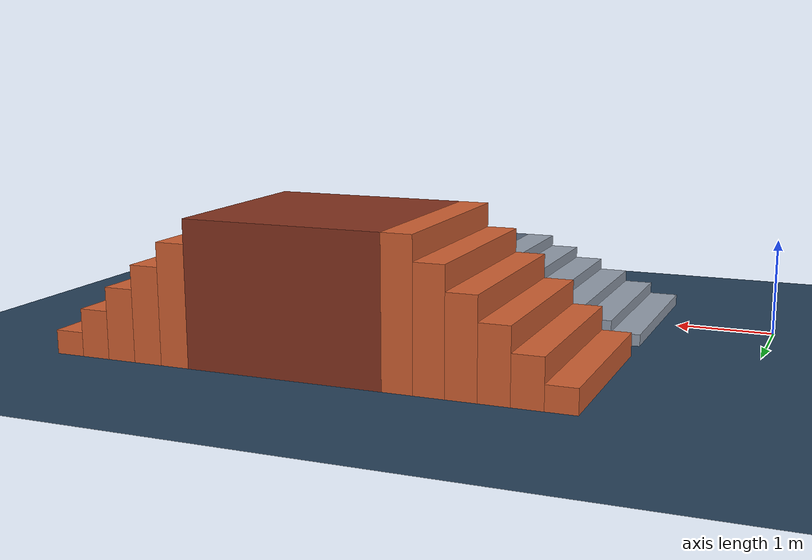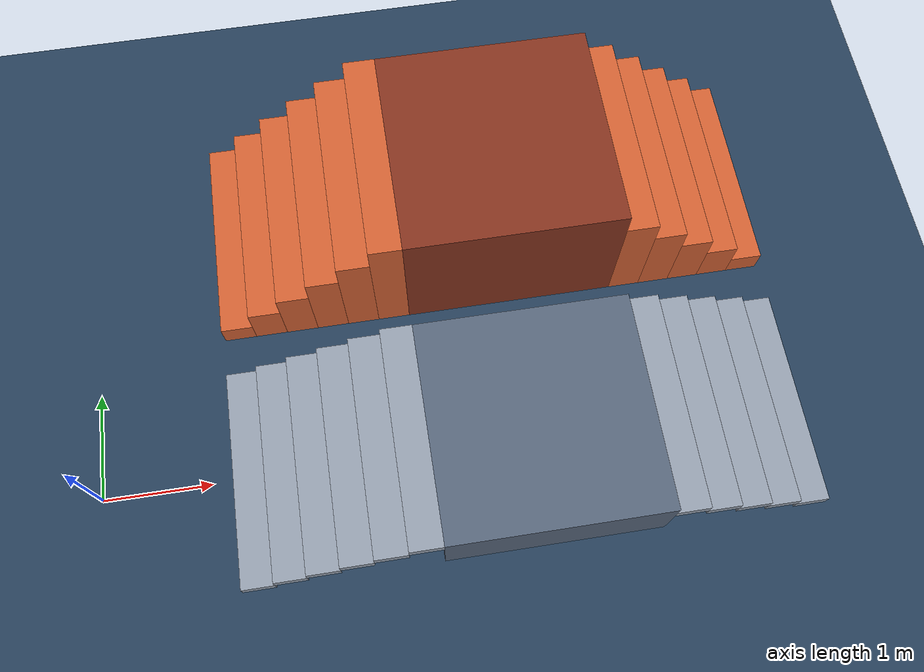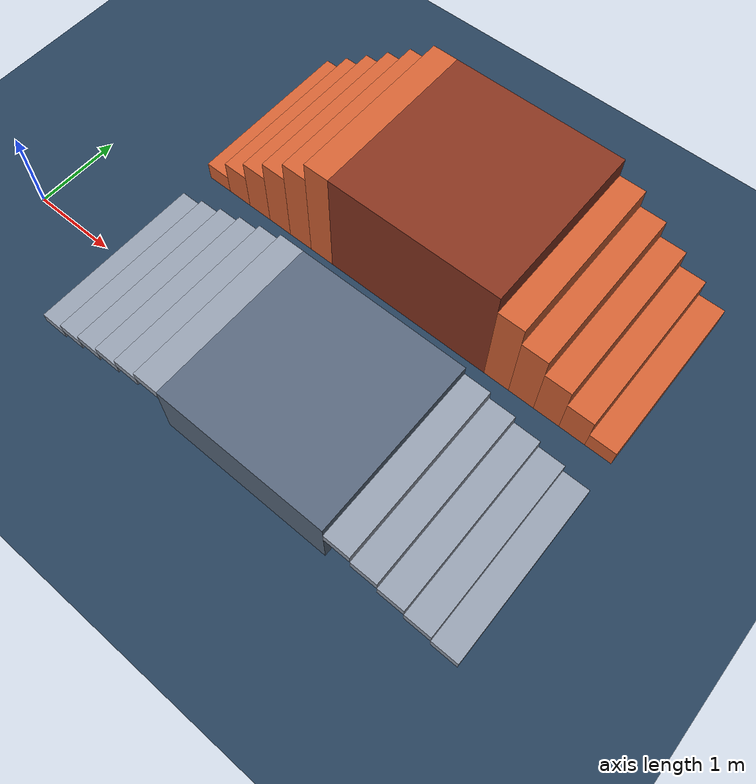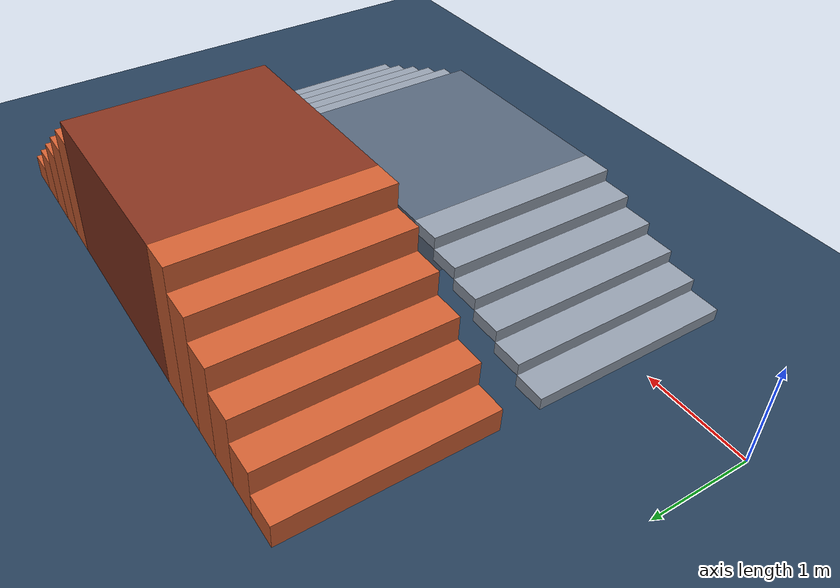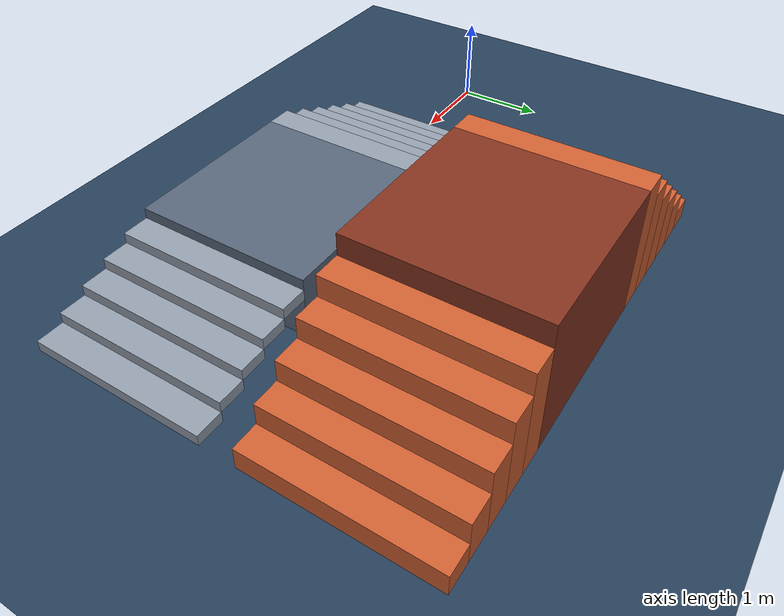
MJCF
<mujoco model="pie stairs up and down">
  <statistic center="3.40 0 0.36" extent="8.0" />

  <visual>
    <headlight diffuse="0.6 0.6 0.6" ambient="0.3 0.3 0.3" specular="0 0 0" />
    <rgba haze="0.15 0.25 0.35 1" />
    <global azimuth="-130" elevation="-20" />
  </visual>

  <asset>
    <texture
      type="skybox"
      builtin="gradient"
      rgb1="0.3 0.5 0.7"
      rgb2="0 0 0"
      width="512"
      height="3072"
    />
    <texture
      type="2d"
      name="groundplane"
      builtin="checker"
      mark="edge"
      rgb1="0.20 0.30 0.40"
      rgb2="0.10 0.20 0.30"
      markrgb="0.8 0.8 0.8"
      width="300"
      height="300"
    />
    <material
      name="groundplane"
      texture="groundplane"
      texuniform="true"
      texrepeat="5 5"
      reflectance="0.2"
    />
    <material name="stairs" rgba="0.58 0.62 0.68 1" />
    <material name="landing" rgba="0.34 0.40 0.48 1" />
    <material name="stairs_level9" rgba="0.82 0.38 0.20 1" />
    <material name="landing_level9" rgba="0.52 0.20 0.12 1" />
  </asset>

  <worldbody>
    <light pos="3.4 0 8" dir="0 0 -1" directional="true" />
    <geom
      name="floor"
      type="plane"
      size="0 0 0.05"
      material="groundplane"
      contype="1"
      conaffinity="1"
      condim="3"
      friction="0.6 0.005 0.0001"
    />

    <!-- Up staircase: x=[1.20, 3.00], surface z=0.12...0.72. -->
    <geom name="stairs_up_step_01" type="box" pos="1.35 0 0.06" size="0.15 1.00 0.06" material="stairs" />
    <geom name="stairs_up_step_02" type="box" pos="1.65 0 0.18" size="0.15 1.00 0.06" material="stairs" />
    <geom name="stairs_up_step_03" type="box" pos="1.95 0 0.30" size="0.15 1.00 0.06" material="stairs" />
    <geom name="stairs_up_step_04" type="box" pos="2.25 0 0.42" size="0.15 1.00 0.06" material="stairs" />
    <geom name="stairs_up_step_05" type="box" pos="2.55 0 0.54" size="0.15 1.00 0.06" material="stairs" />
    <geom name="stairs_up_step_06" type="box" pos="2.85 0 0.66" size="0.15 1.00 0.06" material="stairs" />

    <!-- Landing: x=[3.00, 5.00], surface z=0.72. -->
    <geom name="stairs_landing" type="box" pos="4.00 0 0.36" size="1.00 1.00 0.36" material="landing" />

    <!--
      Down staircase: five raised treads, followed by the sixth and final
      0.12 m descent onto the ground plane.
    -->
    <geom name="stairs_down_step_01" type="box" pos="5.15 0 0.54" size="0.15 1.00 0.06" material="stairs" />
    <geom name="stairs_down_step_02" type="box" pos="5.45 0 0.42" size="0.15 1.00 0.06" material="stairs" />
    <geom name="stairs_down_step_03" type="box" pos="5.75 0 0.30" size="0.15 1.00 0.06" material="stairs" />
    <geom name="stairs_down_step_04" type="box" pos="6.05 0 0.18" size="0.15 1.00 0.06" material="stairs" />
    <geom name="stairs_down_step_05" type="box" pos="6.35 0 0.06" size="0.15 1.00 0.06" material="stairs" />

    <!--
      Parallel level-9 route: y=[1.40, 3.40], 0.24 m rise, 0.30 m tread.
      Six ascending steps reach the 1.44 m landing.
    -->
    <geom name="stairs_level9_up_step_01" type="box" pos="1.35 2.40 0.12" size="0.15 1.00 0.12" material="stairs_level9" />
    <geom name="stairs_level9_up_step_02" type="box" pos="1.65 2.40 0.24" size="0.15 1.00 0.24" material="stairs_level9" />
    <geom name="stairs_level9_up_step_03" type="box" pos="1.95 2.40 0.36" size="0.15 1.00 0.36" material="stairs_level9" />
    <geom name="stairs_level9_up_step_04" type="box" pos="2.25 2.40 0.48" size="0.15 1.00 0.48" material="stairs_level9" />
    <geom name="stairs_level9_up_step_05" type="box" pos="2.55 2.40 0.60" size="0.15 1.00 0.60" material="stairs_level9" />
    <geom name="stairs_level9_up_step_06" type="box" pos="2.85 2.40 0.72" size="0.15 1.00 0.72" material="stairs_level9" />

    <geom name="stairs_level9_landing" type="box" pos="4.00 2.40 0.72" size="1.00 1.00 0.72" material="landing_level9" />

    <!-- Five raised treads, followed by the final 0.24 m drop to ground. -->
    <geom name="stairs_level9_down_step_01" type="box" pos="5.15 2.40 0.60" size="0.15 1.00 0.60" material="stairs_level9" />
    <geom name="stairs_level9_down_step_02" type="box" pos="5.45 2.40 0.48" size="0.15 1.00 0.48" material="stairs_level9" />
    <geom name="stairs_level9_down_step_03" type="box" pos="5.75 2.40 0.36" size="0.15 1.00 0.36" material="stairs_level9" />
    <geom name="stairs_level9_down_step_04" type="box" pos="6.05 2.40 0.24" size="0.15 1.00 0.24" material="stairs_level9" />
    <geom name="stairs_level9_down_step_05" type="box" pos="6.35 2.40 0.12" size="0.15 1.00 0.12" material="stairs_level9" />
  </worldbody>
</mujoco>
